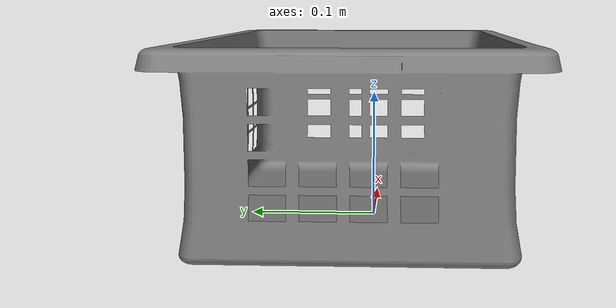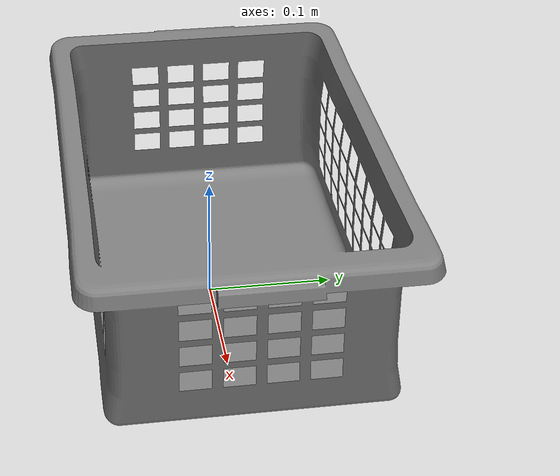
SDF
<?xml version='1.0'?>
<sdf version='1.6'>
  <model name='medicine_tray'>
    <static>false</static> <!-- Tray can fall -->
    <link name='link'>
      <!-- Enable gravity -->
      <gravity>1</gravity>

      <!-- Inertial properties -->
      <inertial>
        <mass>2.0</mass> <!-- Approx. 2 kg -->
        <inertia>
          <ixx>0.02</ixx>
          <iyy>0.02</iyy>
          <izz>0.02</izz>
          <ixy>0.0</ixy>
          <ixz>0.0</ixz>
          <iyz>0.0</iyz>
        </inertia>
      </inertial>

      <!-- Visual appearance -->
      <visual name='visual'>
        <geometry>
          <mesh>
            <uri>model://medicine_tray/meshes/medicine_tray.stl</uri>
            <scale>0.35 0.35 0.35</scale>
          </mesh>
        </geometry>
        <material>
          <ambient>0.2 0.2 0.2 1</ambient>
          <diffuse>0.5 0.5 0.5 1</diffuse>
          <specular>0.1 0.1 0.1 1</specular>
        </material>
      </visual>

      <!-- Collision for physics -->
      <collision name='collision'>
        <geometry>
          <mesh>
            <uri>model://medicine_tray/meshes/medicine_tray.stl</uri>
            <scale>0.35 0.35 0.35</scale>
          </mesh>
        </geometry>
        <surface>
          <contact>
            <ode/>
          </contact>
          <bounce>
            <restitution_coefficient>0.1</restitution_coefficient>
            <threshold>1000.0</threshold>
          </bounce>
          <friction>
            <ode>
              <mu>0.8</mu>
              <mu2>0.8</mu2>
            </ode>
          </friction>
        </surface>
      </collision>
    </link>
  </model>
</sdf>
